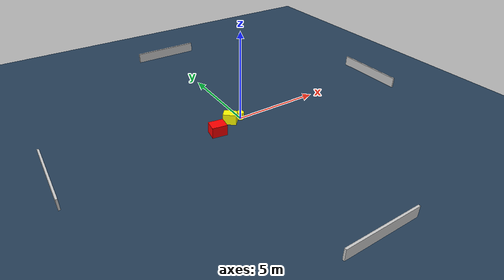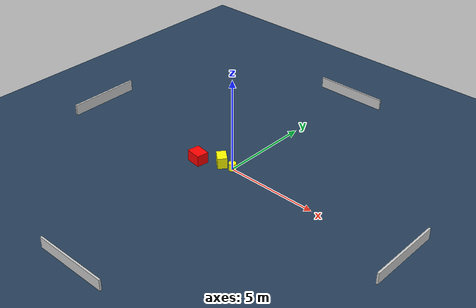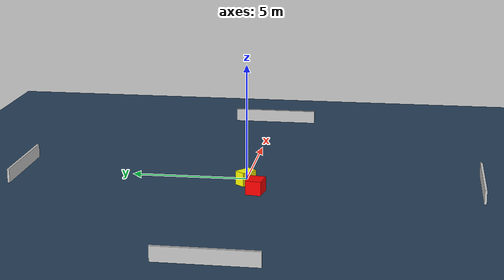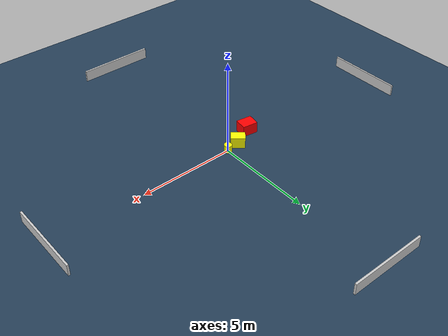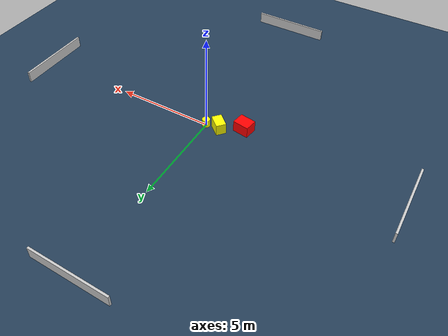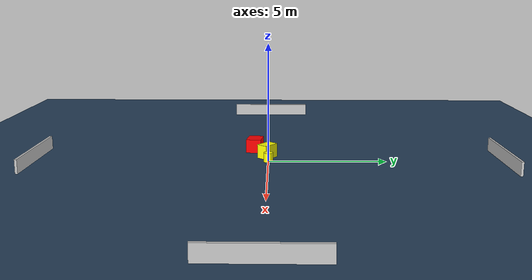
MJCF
<?xml version="1.0" ?>
<mujoco model="generated_environment">
  <option timestep="0.01" integrator="RK4" cone="elliptic"/>
  <default>
    <geom density="1"/>
  </default>
  <asset>
    <texture builtin="gradient" height="3072" name="skybox" rgb1="0.3 0.5 0.7" rgb2="0 0 0" type="skybox" width="512"/>
    <texture builtin="checker" height="300" name="groundplane" rgb1="0.2 0.3 0.4" rgb2="0.1 0.2 0.3" type="2d" width="300"/>
    <material name="groundplane" reflectance="0.2" texrepeat="5 5" texture="groundplane"/>
  </asset>
  <worldbody>
    <light dir="0 0 -1" directional="true" pos="0 0 1.5"/>
    <geom condim="3" friction="0.5 0.005 0.001" material="groundplane" name="floor" pos="0 0 0" size="0 0 0.05" type="plane"/>
    <body name="walls">
      <geom name="wall_1" condim="4" pos="-10.0 0.0 0.3" rgba="0.800000011920929 0.800000011920929 0.800000011920929 1.0" size="0.05 2.0 0.3" type="box"/>
      <geom name="wall_2" condim="4" pos="10.0 0.0 0.3" rgba="0.800000011920929 0.800000011920929 0.800000011920929 1.0" size="0.05 2.0 0.3" type="box"/>
      <geom name="wall_3" condim="4" pos="0.0 -10.0 0.3" rgba="0.800000011920929 0.800000011920929 0.800000011920929 1.0" size="2.0 0.05 0.3" type="box"/>
      <geom name="wall_4" condim="4" pos="0.0 10.0 0.3" rgba="0.800000011920929 0.800000011920929 0.800000011920929 1.0" size="2.0 0.05 0.3" type="box"/>
    </body>
    <body name="robot">
      <joint name="joint_x" type="slide" pos="0 0 0" axis="1 0 0"/>
      <joint name="joint_y" type="slide" pos="0 0 0" axis="0 1 0"/>
      <geom name="robot" type="cylinder" pos="0.0 0.0 0.2" size="0.2 0.2 0.0" mass="5.0" friction="1.0 0.005 0.0001" condim="4" rgba="1.0 1.0 0.0 1.0"/>
    </body>
    <body name="obstacle_1_movable">
      <geom name="obstacle_1_movable" condim="4" pos="-0.6859877156745955 -0.053736818657096695 0.3" euler="0 0 319.1705393797345" friction="0.0 0.005 0.001" rgba="1.0 1.0 0.0 1.0" size="0.3669834755309429 0.251512130566807 0.3" type="box" mass="0.1"/>
      <joint type="free"/>
    </body>
    <body name="obstacle_2_static">
      <geom name="obstacle_2_static" condim="4" pos="-1.7878609266628618 -0.6279382218395222 0.3" euler="0 0 171.62503060331852" friction="0.0 0.005 0.001" rgba="1.0 0.0 0.0 1.0" size="0.41191852574433413 0.32698132825192416 0.3" type="box"/>
    </body>
  </worldbody>
  <actuator>
    <motor name="actuator_x" joint="joint_x" gear="1" ctrlrange="-1 1"/>
    <motor name="actuator_y" joint="joint_y" gear="1" ctrlrange="-1 1"/>
  </actuator>
</mujoco>
